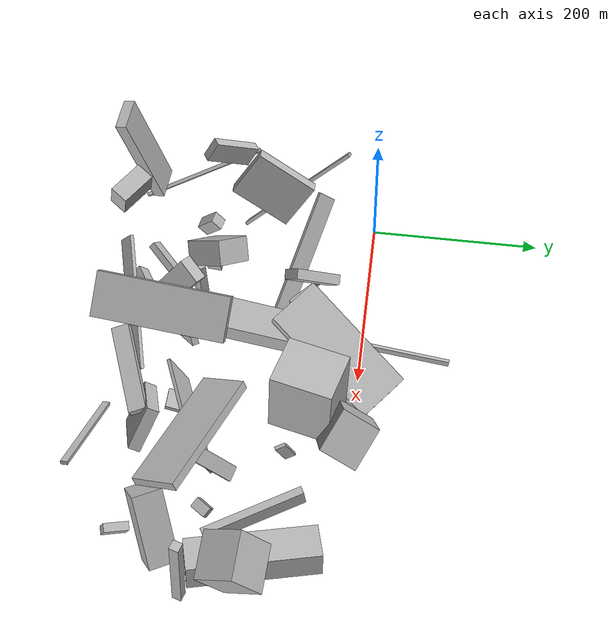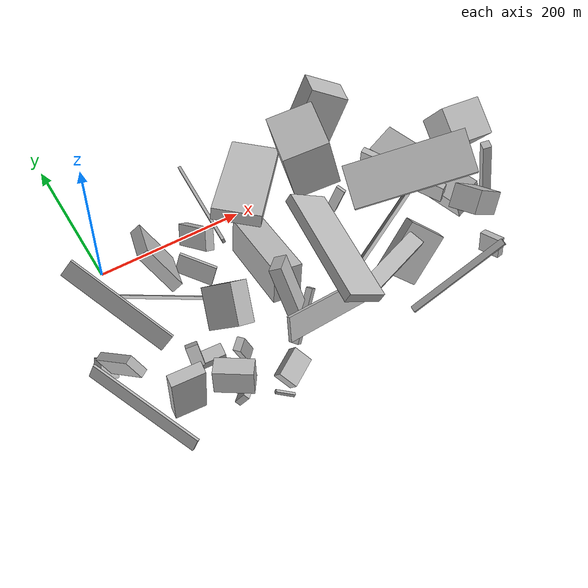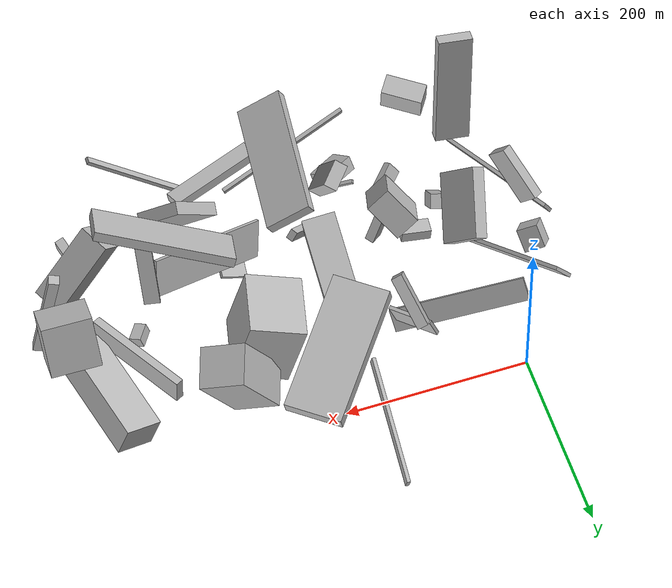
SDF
<sdf version="1.6">
 <world name="default">
  <model name="building_1">
   <static>0</static>
   <pose>-16.874202046947126 -96.55154958133949 64.06567864982752 -2.4018138667731352 -0.8921669992972914 -0.07573137161854886</pose>
   <link name="link">
    <gravity>0</gravity>
    <pose>0 0 2.0 0 0 0</pose>
    <collision name="collision"><geometry><box><size>25 150 4</size></box></geometry></collision>
    <visual name="visual">
     <cast_shadows>0</cast_shadows>
     <geometry><box><size>25 150 4</size></box></geometry>
     <material>
      <script>
       <uri>model://HANNAS_wall/materials/scripts</uri>
       <uri>model://HANNAS_wall/materials/textures</uri>
       <name>vrc/HANNAS_wall</name>
      </script>
     </material>
    </visual>
   </link>
  </model>
  <model name="building_2">
   <static>0</static>
   <pose>173.05219122710406 -72.95754308126676 59.44368679060228 1.3479795762569315 0.13969321511603275 -0.07342275533438569</pose>
   <link name="link">
    <gravity>0</gravity>
    <pose>0 0 56.0 0 0 0</pose>
    <collision name="collision"><geometry><box><size>36 47 112</size></box></geometry></collision>
    <visual name="visual">
     <cast_shadows>0</cast_shadows>
     <geometry><box><size>36 47 112</size></box></geometry>
     <material>
      <script>
       <uri>model://HANNAS_wall/materials/scripts</uri>
       <uri>model://HANNAS_wall/materials/textures</uri>
       <name>vrc/HANNAS_wall</name>
      </script>
     </material>
    </visual>
   </link>
  </model>
  <model name="building_4">
   <static>0</static>
   <pose>-47.79910704039926 -216.81489982392512 23.80374327561661 0.45806923557373713 -0.1662707721679615 2.020924672866933</pose>
   <link name="link">
    <gravity>0</gravity>
    <pose>0 0 8.5 0 0 0</pose>
    <collision name="collision"><geometry><box><size>150 4 17</size></box></geometry></collision>
    <visual name="visual">
     <cast_shadows>0</cast_shadows>
     <geometry><box><size>150 4 17</size></box></geometry>
     <material>
      <script>
       <uri>model://HANNAS_wall/materials/scripts</uri>
       <uri>model://HANNAS_wall/materials/textures</uri>
       <name>vrc/HANNAS_wall</name>
      </script>
     </material>
    </visual>
   </link>
  </model>
  <model name="building_7">
   <static>0</static>
   <pose>37.50927661575013 -189.18100023504584 43.95644942055945 -0.8073901912445586 0.16542618009762333 2.946928458306373</pose>
   <link name="link">
    <gravity>0</gravity>
    <pose>0 0 8.0 0 0 0</pose>
    <collision name="collision"><geometry><box><size>15 26 16</size></box></geometry></collision>
    <visual name="visual">
     <cast_shadows>0</cast_shadows>
     <geometry><box><size>15 26 16</size></box></geometry>
     <material>
      <script>
       <uri>model://HANNAS_wall/materials/scripts</uri>
       <uri>model://HANNAS_wall/materials/textures</uri>
       <name>vrc/HANNAS_wall</name>
      </script>
     </material>
    </visual>
   </link>
  </model>
  <model name="building_11">
   <static>0</static>
   <pose>262.8686615402564 -81.90210704428698 131.5539841347299 1.5340880472795329 0.24916760166507096 2.895060523938277</pose>
   <link name="link">
    <gravity>0</gravity>
    <pose>0 0 35.0 0 0 0</pose>
    <collision name="collision"><geometry><box><size>60 82 70</size></box></geometry></collision>
    <visual name="visual">
     <cast_shadows>0</cast_shadows>
     <geometry><box><size>60 82 70</size></box></geometry>
     <material>
      <script>
       <uri>model://HANNAS_wall/materials/scripts</uri>
       <uri>model://HANNAS_wall/materials/textures</uri>
       <name>vrc/HANNAS_wall</name>
      </script>
     </material>
    </visual>
   </link>
  </model>
  <model name="building_16">
   <static>0</static>
   <pose>294.25643481398083 -6.646318750802287 91.21542643138092 0.41600658821906183 0.2985280455373625 1.2212802390428055</pose>
   <link name="link">
    <gravity>0</gravity>
    <pose>0 0 43.5 0 0 0</pose>
    <collision name="collision"><geometry><box><size>44 50 87</size></box></geometry></collision>
    <visual name="visual">
     <cast_shadows>0</cast_shadows>
     <geometry><box><size>44 50 87</size></box></geometry>
     <material>
      <script>
       <uri>model://HANNAS_wall/materials/scripts</uri>
       <uri>model://HANNAS_wall/materials/textures</uri>
       <name>vrc/HANNAS_wall</name>
      </script>
     </material>
    </visual>
   </link>
  </model>
  <model name="building_19">
   <static>0</static>
   <pose>183.95789938375566 -255.46991980841224 122.63478269574074 -1.1235261250478144 -0.3074954822950232 -2.9362975289541473</pose>
   <link name="link">
    <gravity>0</gravity>
    <pose>0 0 2.0 0 0 0</pose>
    <collision name="collision"><geometry><box><size>150 30 4</size></box></geometry></collision>
    <visual name="visual">
     <cast_shadows>0</cast_shadows>
     <geometry><box><size>150 30 4</size></box></geometry>
     <material>
      <script>
       <uri>model://HANNAS_wall/materials/scripts</uri>
       <uri>model://HANNAS_wall/materials/textures</uri>
       <name>vrc/HANNAS_wall</name>
      </script>
     </material>
    </visual>
   </link>
  </model>
  <model name="building_21">
   <static>0</static>
   <pose>377.53155659933014 -161.58489503979825 8.976761662799078 2.830281916351776 -0.01727150724491431 -2.179556579080104</pose>
   <link name="link">
    <gravity>0</gravity>
    <pose>0 0 6.5 0 0 0</pose>
    <collision name="collision"><geometry><box><size>20 13 13</size></box></geometry></collision>
    <visual name="visual">
     <cast_shadows>0</cast_shadows>
     <geometry><box><size>20 13 13</size></box></geometry>
     <material>
      <script>
       <uri>model://HANNAS_wall/materials/scripts</uri>
       <uri>model://HANNAS_wall/materials/textures</uri>
       <name>vrc/HANNAS_wall</name>
      </script>
     </material>
    </visual>
   </link>
  </model>
  <model name="building_22">
   <static>0</static>
   <pose>-10.3150727138669 -268.10797462904475 130.46524671172148 1.8202813087983527 -0.07039948415981105 -0.09854468517857572</pose>
   <link name="link">
    <gravity>0</gravity>
    <pose>0 0 6.5 0 0 0</pose>
    <collision name="collision"><geometry><box><size>37 134 13</size></box></geometry></collision>
    <visual name="visual">
     <cast_shadows>0</cast_shadows>
     <geometry><box><size>37 134 13</size></box></geometry>
     <material>
      <script>
       <uri>model://HANNAS_wall/materials/scripts</uri>
       <uri>model://HANNAS_wall/materials/textures</uri>
       <name>vrc/HANNAS_wall</name>
      </script>
     </material>
    </visual>
   </link>
  </model>
  <model name="building_23">
   <static>0</static>
   <pose>295.2608856225371 -181.44611489909067 81.64813200044021 -1.1963494582615752 -0.39699100307764523 0.3850275791023789</pose>
   <link name="link">
    <gravity>0</gravity>
    <pose>0 0 2.0 0 0 0</pose>
    <collision name="collision"><geometry><box><size>150 42 4</size></box></geometry></collision>
    <visual name="visual">
     <cast_shadows>0</cast_shadows>
     <geometry><box><size>150 42 4</size></box></geometry>
     <material>
      <script>
       <uri>model://HANNAS_wall/materials/scripts</uri>
       <uri>model://HANNAS_wall/materials/textures</uri>
       <name>vrc/HANNAS_wall</name>
      </script>
     </material>
    </visual>
   </link>
  </model>
  <model name="building_24">
   <static>0</static>
   <pose>160.1400708516067 -198.52335312003063 119.28582097609758 -1.1852439145454967 0.42545596520661905 2.5401878207706696</pose>
   <link name="link">
    <gravity>0</gravity>
    <pose>0 0 14.5 0 0 0</pose>
    <collision name="collision"><geometry><box><size>15 63 29</size></box></geometry></collision>
    <visual name="visual">
     <cast_shadows>0</cast_shadows>
     <geometry><box><size>15 63 29</size></box></geometry>
     <material>
      <script>
       <uri>model://HANNAS_wall/materials/scripts</uri>
       <uri>model://HANNAS_wall/materials/textures</uri>
       <name>vrc/HANNAS_wall</name>
      </script>
     </material>
    </visual>
   </link>
  </model>
  <model name="building_28">
   <static>0</static>
   <pose>367.3742764468928 -43.66935493340659 65.87529768774772 1.6109510089707875 -0.06697222815216503 0.506755102536705</pose>
   <link name="link">
    <gravity>0</gravity>
    <pose>0 0 59.5 0 0 0</pose>
    <collision name="collision"><geometry><box><size>9 28 119</size></box></geometry></collision>
    <visual name="visual">
     <cast_shadows>0</cast_shadows>
     <geometry><box><size>9 28 119</size></box></geometry>
     <material>
      <script>
       <uri>model://HANNAS_wall/materials/scripts</uri>
       <uri>model://HANNAS_wall/materials/textures</uri>
       <name>vrc/HANNAS_wall</name>
      </script>
     </material>
    </visual>
   </link>
  </model>
  <model name="building_29">
   <static>0</static>
   <pose>467.3617362444928 -119.2827186010202 147.98930259061393 -3.0777652267102185 -0.5513376746879186 1.4800898679576147</pose>
   <link name="link">
    <gravity>0</gravity>
    <pose>0 0 27.5 0 0 0</pose>
    <collision name="collision"><geometry><box><size>49 54 55</size></box></geometry></collision>
    <visual name="visual">
     <cast_shadows>0</cast_shadows>
     <geometry><box><size>49 54 55</size></box></geometry>
     <material>
      <script>
       <uri>model://HANNAS_wall/materials/scripts</uri>
       <uri>model://HANNAS_wall/materials/textures</uri>
       <name>vrc/HANNAS_wall</name>
      </script>
     </material>
    </visual>
   </link>
  </model>
  <model name="building_30">
   <static>0</static>
   <pose>417.90250078699285 -97.21010224682058 36.939371527577336 1.2402114440798806 0.0785611428417199 1.8086273152203385</pose>
   <link name="link">
    <gravity>0</gravity>
    <pose>0 0 21.0 0 0 0</pose>
    <collision name="collision"><geometry><box><size>150 34 42</size></box></geometry></collision>
    <visual name="visual">
     <cast_shadows>0</cast_shadows>
     <geometry><box><size>150 34 42</size></box></geometry>
     <material>
      <script>
       <uri>model://HANNAS_wall/materials/scripts</uri>
       <uri>model://HANNAS_wall/materials/textures</uri>
       <name>vrc/HANNAS_wall</name>
      </script>
     </material>
    </visual>
   </link>
  </model>
  <model name="building_32">
   <static>0</static>
   <pose>47.5553355355397 -272.68253483627683 125.40044677939412 1.4089859767862278 -0.062020753035507345 -0.5986083164916539</pose>
   <link name="link">
    <gravity>0</gravity>
    <pose>0 0 11.0 0 0 0</pose>
    <collision name="collision"><geometry><box><size>44 31 22</size></box></geometry></collision>
    <visual name="visual">
     <cast_shadows>0</cast_shadows>
     <geometry><box><size>44 31 22</size></box></geometry>
     <material>
      <script>
       <uri>model://HANNAS_wall/materials/scripts</uri>
       <uri>model://HANNAS_wall/materials/textures</uri>
       <name>vrc/HANNAS_wall</name>
      </script>
     </material>
    </visual>
   </link>
  </model>
  <model name="building_37">
   <static>0</static>
   <pose>78.81327983981879 -178.44567197501158 96.67587524709782 2.312177013446687 -0.6213776650274483 1.2870508743369462</pose>
   <link name="link">
    <gravity>0</gravity>
    <pose>0 0 14.5 0 0 0</pose>
    <collision name="collision"><geometry><box><size>51 46 29</size></box></geometry></collision>
    <visual name="visual">
     <cast_shadows>0</cast_shadows>
     <geometry><box><size>51 46 29</size></box></geometry>
     <material>
      <script>
       <uri>model://HANNAS_wall/materials/scripts</uri>
       <uri>model://HANNAS_wall/materials/textures</uri>
       <name>vrc/HANNAS_wall</name>
      </script>
     </material>
    </visual>
   </link>
  </model>
  <model name="building_38">
   <static>0</static>
   <pose>362.11058647797586 -137.34548855334262 154.6769716192568 1.7715634732673153 -0.6096609944284881 1.1562547281240683</pose>
   <link name="link">
    <gravity>0</gravity>
    <pose>0 0 8.5 0 0 0</pose>
    <collision name="collision"><geometry><box><size>4 72 17</size></box></geometry></collision>
    <visual name="visual">
     <cast_shadows>0</cast_shadows>
     <geometry><box><size>4 72 17</size></box></geometry>
     <material>
      <script>
       <uri>model://HANNAS_wall/materials/scripts</uri>
       <uri>model://HANNAS_wall/materials/textures</uri>
       <name>vrc/HANNAS_wall</name>
      </script>
     </material>
    </visual>
   </link>
  </model>
  <model name="building_42">
   <static>0</static>
   <pose>284.63761960370834 -278.024859431227 64.82241791091182 -0.2012501992646284 -0.8742957575851164 -3.035527273050312</pose>
   <link name="link">
    <gravity>0</gravity>
    <pose>0 0 66.5 0 0 0</pose>
    <collision name="collision"><geometry><box><size>4 8 133</size></box></geometry></collision>
    <visual name="visual">
     <cast_shadows>0</cast_shadows>
     <geometry><box><size>4 8 133</size></box></geometry>
     <material>
      <script>
       <uri>model://HANNAS_wall/materials/scripts</uri>
       <uri>model://HANNAS_wall/materials/textures</uri>
       <name>vrc/HANNAS_wall</name>
      </script>
     </material>
    </visual>
   </link>
  </model>
  <model name="building_43">
   <static>0</static>
   <pose>421.2577406737661 -205.53544495674356 89.156141024974 0.7761521772453154 0.1656555337284517 2.07901434761364</pose>
   <link name="link">
    <gravity>0</gravity>
    <pose>0 0 15.0 0 0 0</pose>
    <collision name="collision"><geometry><box><size>34 88 30</size></box></geometry></collision>
    <visual name="visual">
     <cast_shadows>0</cast_shadows>
     <geometry><box><size>34 88 30</size></box></geometry>
     <material>
      <script>
       <uri>model://HANNAS_wall/materials/scripts</uri>
       <uri>model://HANNAS_wall/materials/textures</uri>
       <name>vrc/HANNAS_wall</name>
      </script>
     </material>
    </visual>
   </link>
  </model>
  <model name="building_44">
   <static>0</static>
   <pose>68.03166980841092 -247.31026941786513 14.686139269177403 -0.2769546848523489 0.5612419998153829 -0.9231047998068369</pose>
   <link name="link">
    <gravity>0</gravity>
    <pose>0 0 9.0 0 0 0</pose>
    <collision name="collision"><geometry><box><size>8 39 18</size></box></geometry></collision>
    <visual name="visual">
     <cast_shadows>0</cast_shadows>
     <geometry><box><size>8 39 18</size></box></geometry>
     <material>
      <script>
       <uri>model://HANNAS_wall/materials/scripts</uri>
       <uri>model://HANNAS_wall/materials/textures</uri>
       <name>vrc/HANNAS_wall</name>
      </script>
     </material>
    </visual>
   </link>
  </model>
  <model name="building_45">
   <static>0</static>
   <pose>59.60392662925878 -186.8628000925574 20.54631793345461 -3.0817092671948667 -0.09464475727774849 -0.10966627602671805</pose>
   <link name="link">
    <gravity>0</gravity>
    <pose>0 0 6.5 0 0 0</pose>
    <collision name="collision"><geometry><box><size>32 17 13</size></box></geometry></collision>
    <visual name="visual">
     <cast_shadows>0</cast_shadows>
     <geometry><box><size>32 17 13</size></box></geometry>
     <material>
      <script>
       <uri>model://HANNAS_wall/materials/scripts</uri>
       <uri>model://HANNAS_wall/materials/textures</uri>
       <name>vrc/HANNAS_wall</name>
      </script>
     </material>
    </visual>
   </link>
  </model>
  <model name="building_46">
   <static>0</static>
   <pose>-44.52106242254291 -177.32988392611014 78.75708484350338 1.7735498536990881 0.8953578525776058 -0.8635785609920408</pose>
   <link name="link">
    <gravity>0</gravity>
    <pose>0 0 5.5 0 0 0</pose>
    <collision name="collision"><geometry><box><size>27 62 11</size></box></geometry></collision>
    <visual name="visual">
     <cast_shadows>0</cast_shadows>
     <geometry><box><size>27 62 11</size></box></geometry>
     <material>
      <script>
       <uri>model://HANNAS_wall/materials/scripts</uri>
       <uri>model://HANNAS_wall/materials/textures</uri>
       <name>vrc/HANNAS_wall</name>
      </script>
     </material>
    </visual>
   </link>
  </model>
  <model name="building_47">
   <static>0</static>
   <pose>340.27064593183763 -186.72686847749458 155.36567409551566 -1.0453662867021964 -0.27684825875445535 -0.36548800734157855</pose>
   <link name="link">
    <gravity>0</gravity>
    <pose>0 0 27.0 0 0 0</pose>
    <collision name="collision"><geometry><box><size>150 10 54</size></box></geometry></collision>
    <visual name="visual">
     <cast_shadows>0</cast_shadows>
     <geometry><box><size>150 10 54</size></box></geometry>
     <material>
      <script>
       <uri>model://HANNAS_wall/materials/scripts</uri>
       <uri>model://HANNAS_wall/materials/textures</uri>
       <name>vrc/HANNAS_wall</name>
      </script>
     </material>
    </visual>
   </link>
  </model>
  <model name="building_48">
   <static>0</static>
   <pose>156.2006092629337 -43.65180132421858 18.497420510155127 -1.8854498221008917 1.3457768724033812 -0.3918592108623847</pose>
   <link name="link">
    <gravity>0</gravity>
    <pose>0 0 75.0 0 0 0</pose>
    <collision name="collision"><geometry><box><size>8 4 150</size></box></geometry></collision>
    <visual name="visual">
     <cast_shadows>0</cast_shadows>
     <geometry><box><size>8 4 150</size></box></geometry>
     <material>
      <script>
       <uri>model://HANNAS_wall/materials/scripts</uri>
       <uri>model://HANNAS_wall/materials/textures</uri>
       <name>vrc/HANNAS_wall</name>
      </script>
     </material>
    </visual>
   </link>
  </model>
  <model name="building_49">
   <static>0</static>
   <pose>286.6682627419168 -235.91647320409365 82.26272842089891 0.563733500214347 -0.6568847404069291 2.658560051320104</pose>
   <link name="link">
    <gravity>0</gravity>
    <pose>0 0 33.5 0 0 0</pose>
    <collision name="collision"><geometry><box><size>52 14 67</size></box></geometry></collision>
    <visual name="visual">
     <cast_shadows>0</cast_shadows>
     <geometry><box><size>52 14 67</size></box></geometry>
     <material>
      <script>
       <uri>model://HANNAS_wall/materials/scripts</uri>
       <uri>model://HANNAS_wall/materials/textures</uri>
       <name>vrc/HANNAS_wall</name>
      </script>
     </material>
    </visual>
   </link>
  </model>
  <model name="building_52">
   <static>0</static>
   <pose>423.48487276732794 -231.8351201853288 58.731394701983845 -1.3091101169059456 -0.2033471321702594 -2.9062840321191024</pose>
   <link name="link">
    <gravity>0</gravity>
    <pose>0 0 14.0 0 0 0</pose>
    <collision name="collision"><geometry><box><size>10 25 28</size></box></geometry></collision>
    <visual name="visual">
     <cast_shadows>0</cast_shadows>
     <geometry><box><size>10 25 28</size></box></geometry>
     <material>
      <script>
       <uri>model://HANNAS_wall/materials/scripts</uri>
       <uri>model://HANNAS_wall/materials/textures</uri>
       <name>vrc/HANNAS_wall</name>
      </script>
     </material>
    </visual>
   </link>
  </model>
  <model name="building_53">
   <static>0</static>
   <pose>155.72546079505366 -80.35731708934277 106.68687943028384 -2.9556888915422705 -1.3224025575748328 0.6959382099704893</pose>
   <link name="link">
    <gravity>0</gravity>
    <pose>0 0 75.0 0 0 0</pose>
    <collision name="collision"><geometry><box><size>17 63 150</size></box></geometry></collision>
    <visual name="visual">
     <cast_shadows>0</cast_shadows>
     <geometry><box><size>17 63 150</size></box></geometry>
     <material>
      <script>
       <uri>model://HANNAS_wall/materials/scripts</uri>
       <uri>model://HANNAS_wall/materials/textures</uri>
       <name>vrc/HANNAS_wall</name>
      </script>
     </material>
    </visual>
   </link>
  </model>
  <model name="building_57">
   <static>0</static>
   <pose>312.61928889226556 -70.78548424101021 40.42432434738214 1.424804461687226 -1.3306985318012021 -0.9863110307686369</pose>
   <link name="link">
    <gravity>0</gravity>
    <pose>0 0 2.0 0 0 0</pose>
    <collision name="collision"><geometry><box><size>47 13 4</size></box></geometry></collision>
    <visual name="visual">
     <cast_shadows>0</cast_shadows>
     <geometry><box><size>47 13 4</size></box></geometry>
     <material>
      <script>
       <uri>model://HANNAS_wall/materials/scripts</uri>
       <uri>model://HANNAS_wall/materials/textures</uri>
       <name>vrc/HANNAS_wall</name>
      </script>
     </material>
    </visual>
   </link>
  </model>
  <model name="building_58">
   <static>0</static>
   <pose>113.87240369359654 -271.30053491446466 9.757551479583295 2.645925975058506 -0.22407745721900812 -1.8677251163847695</pose>
   <link name="link">
    <gravity>0</gravity>
    <pose>0 0 2.0 0 0 0</pose>
    <collision name="collision"><geometry><box><size>4 26 4</size></box></geometry></collision>
    <visual name="visual">
     <cast_shadows>0</cast_shadows>
     <geometry><box><size>4 26 4</size></box></geometry>
     <material>
      <script>
       <uri>model://HANNAS_wall/materials/scripts</uri>
       <uri>model://HANNAS_wall/materials/textures</uri>
       <name>vrc/HANNAS_wall</name>
      </script>
     </material>
    </visual>
   </link>
  </model>
  <model name="building_59">
   <static>0</static>
   <pose>-20.4229112184243 -61.4020133487221 43.18222428530399 -2.113438939981502 -0.810365282095073 -1.4407399920073911</pose>
   <link name="link">
    <gravity>0</gravity>
    <pose>0 0 75.0 0 0 0</pose>
    <collision name="collision"><geometry><box><size>25 4 150</size></box></geometry></collision>
    <visual name="visual">
     <cast_shadows>0</cast_shadows>
     <geometry><box><size>25 4 150</size></box></geometry>
     <material>
      <script>
       <uri>model://HANNAS_wall/materials/scripts</uri>
       <uri>model://HANNAS_wall/materials/textures</uri>
       <name>vrc/HANNAS_wall</name>
      </script>
     </material>
    </visual>
   </link>
  </model>
  <model name="building_60">
   <static>0</static>
   <pose>208.45230086555495 -216.75032121642948 175.3612667216798 3.1333128277470506 -0.5344953907307471 3.034853857214807</pose>
   <link name="link">
    <gravity>0</gravity>
    <pose>0 0 6.0 0 0 0</pose>
    <collision name="collision"><geometry><box><size>51 150 12</size></box></geometry></collision>
    <visual name="visual">
     <cast_shadows>0</cast_shadows>
     <geometry><box><size>51 150 12</size></box></geometry>
     <material>
      <script>
       <uri>model://HANNAS_wall/materials/scripts</uri>
       <uri>model://HANNAS_wall/materials/textures</uri>
       <name>vrc/HANNAS_wall</name>
      </script>
     </material>
    </visual>
   </link>
  </model>
  <model name="building_61">
   <static>0</static>
   <pose>104.76215846836777 -71.2816631034795 70.180959358878 0.4566312091597189 0.5800159957374073 1.84221152961047</pose>
   <link name="link">
    <gravity>0</gravity>
    <pose>0 0 13.5 0 0 0</pose>
    <collision name="collision"><geometry><box><size>59 12 27</size></box></geometry></collision>
    <visual name="visual">
     <cast_shadows>0</cast_shadows>
     <geometry><box><size>59 12 27</size></box></geometry>
     <material>
      <script>
       <uri>model://HANNAS_wall/materials/scripts</uri>
       <uri>model://HANNAS_wall/materials/textures</uri>
       <name>vrc/HANNAS_wall</name>
      </script>
     </material>
    </visual>
   </link>
  </model>
  <model name="building_62">
   <static>0</static>
   <pose>196.67519370023007 -190.01298529999033 64.45652030240909 2.931201757738394 0.8324412290739511 0.43425759113251566</pose>
   <link name="link">
    <gravity>0</gravity>
    <pose>0 0 35.0 0 0 0</pose>
    <collision name="collision"><geometry><box><size>11 8 70</size></box></geometry></collision>
    <visual name="visual">
     <cast_shadows>0</cast_shadows>
     <geometry><box><size>11 8 70</size></box></geometry>
     <material>
      <script>
       <uri>model://HANNAS_wall/materials/scripts</uri>
       <uri>model://HANNAS_wall/materials/textures</uri>
       <name>vrc/HANNAS_wall</name>
      </script>
     </material>
    </visual>
   </link>
  </model>
  <model name="building_63">
   <static>0</static>
   <pose>117.64512055389078 -89.6555016993479 22.666365110531448 0.9781812940090575 1.2512745191457646 -2.985554062118166</pose>
   <link name="link">
    <gravity>0</gravity>
    <pose>0 0 25.0 0 0 0</pose>
    <collision name="collision"><geometry><box><size>30 4 50</size></box></geometry></collision>
    <visual name="visual">
     <cast_shadows>0</cast_shadows>
     <geometry><box><size>30 4 50</size></box></geometry>
     <material>
      <script>
       <uri>model://HANNAS_wall/materials/scripts</uri>
       <uri>model://HANNAS_wall/materials/textures</uri>
       <name>vrc/HANNAS_wall</name>
      </script>
     </material>
    </visual>
   </link>
  </model>
  <model name="building_67">
   <static>0</static>
   <pose>261.27120931196526 -197.88244047711467 34.452946997348896 2.8641670339423055 -0.46005019795913854 0.0383319644115852</pose>
   <link name="link">
    <gravity>0</gravity>
    <pose>0 0 2.0 0 0 0</pose>
    <collision name="collision"><geometry><box><size>31 35 4</size></box></geometry></collision>
    <visual name="visual">
     <cast_shadows>0</cast_shadows>
     <geometry><box><size>31 35 4</size></box></geometry>
     <material>
      <script>
       <uri>model://HANNAS_wall/materials/scripts</uri>
       <uri>model://HANNAS_wall/materials/textures</uri>
       <name>vrc/HANNAS_wall</name>
      </script>
     </material>
    </visual>
   </link>
  </model>
  <model name="building_71">
   <static>0</static>
   <pose>42.20034076970466 -84.07586268895498 130.80984367385472 -0.7815868975634813 -0.833621323481722 2.2297956462538076</pose>
   <link name="link">
    <gravity>0</gravity>
    <pose>0 0 37.0 0 0 0</pose>
    <collision name="collision"><geometry><box><size>58 14 74</size></box></geometry></collision>
    <visual name="visual">
     <cast_shadows>0</cast_shadows>
     <geometry><box><size>58 14 74</size></box></geometry>
     <material>
      <script>
       <uri>model://HANNAS_wall/materials/scripts</uri>
       <uri>model://HANNAS_wall/materials/textures</uri>
       <name>vrc/HANNAS_wall</name>
      </script>
     </material>
    </visual>
   </link>
  </model>
  <model name="building_72">
   <static>0</static>
   <pose>269.08777993957204 -255.38453921124687 127.07785066455045 -0.09205746147577977 -1.3387322477025045 -1.1309356527350802</pose>
   <link name="link">
    <gravity>0</gravity>
    <pose>0 0 10.0 0 0 0</pose>
    <collision name="collision"><geometry><box><size>10 102 20</size></box></geometry></collision>
    <visual name="visual">
     <cast_shadows>0</cast_shadows>
     <geometry><box><size>10 102 20</size></box></geometry>
     <material>
      <script>
       <uri>model://HANNAS_wall/materials/scripts</uri>
       <uri>model://HANNAS_wall/materials/textures</uri>
       <name>vrc/HANNAS_wall</name>
      </script>
     </material>
    </visual>
   </link>
  </model>
  <model name="building_73">
   <static>0</static>
   <pose>-51.05204479205862 -131.4637469165209 22.403668586633405 2.474065313969559 -0.8135709655859451 -1.3345174617895728</pose>
   <link name="link">
    <gravity>0</gravity>
    <pose>0 0 11.0 0 0 0</pose>
    <collision name="collision"><geometry><box><size>26 23 22</size></box></geometry></collision>
    <visual name="visual">
     <cast_shadows>0</cast_shadows>
     <geometry><box><size>26 23 22</size></box></geometry>
     <material>
      <script>
       <uri>model://HANNAS_wall/materials/scripts</uri>
       <uri>model://HANNAS_wall/materials/textures</uri>
       <name>vrc/HANNAS_wall</name>
      </script>
     </material>
    </visual>
   </link>
  </model>
  <model name="building_75">
   <static>0</static>
   <pose>142.26871100457709 -255.4142137754875 49.05214665943133 1.7974559122364746 -0.9791346660553585 -1.216989832504422</pose>
   <link name="link">
    <gravity>0</gravity>
    <pose>0 0 19.0 0 0 0</pose>
    <collision name="collision"><geometry><box><size>16 25 38</size></box></geometry></collision>
    <visual name="visual">
     <cast_shadows>0</cast_shadows>
     <geometry><box><size>16 25 38</size></box></geometry>
     <material>
      <script>
       <uri>model://HANNAS_wall/materials/scripts</uri>
       <uri>model://HANNAS_wall/materials/textures</uri>
       <name>vrc/HANNAS_wall</name>
      </script>
     </material>
    </visual>
   </link>
  </model>
  <model name="building_76">
   <static>0</static>
   <pose>101.83318946908753 -196.41762162915936 25.354318031979123 2.700485214563712 1.2287996481548011 0.25814030574515523</pose>
   <link name="link">
    <gravity>0</gravity>
    <pose>0 0 8.5 0 0 0</pose>
    <collision name="collision"><geometry><box><size>42 10 17</size></box></geometry></collision>
    <visual name="visual">
     <cast_shadows>0</cast_shadows>
     <geometry><box><size>42 10 17</size></box></geometry>
     <material>
      <script>
       <uri>model://HANNAS_wall/materials/scripts</uri>
       <uri>model://HANNAS_wall/materials/textures</uri>
       <name>vrc/HANNAS_wall</name>
      </script>
     </material>
    </visual>
   </link>
  </model>
  <model name="building_77">
   <static>0</static>
   <pose>478.7082007759876 -167.82108466962111 85.5879005938809 1.7428752238048142 0.005724310718626911 -1.868226628484497</pose>
   <link name="link">
    <gravity>0</gravity>
    <pose>0 0 5.5 0 0 0</pose>
    <collision name="collision"><geometry><box><size>11 127 11</size></box></geometry></collision>
    <visual name="visual">
     <cast_shadows>0</cast_shadows>
     <geometry><box><size>11 127 11</size></box></geometry>
     <material>
      <script>
       <uri>model://HANNAS_wall/materials/scripts</uri>
       <uri>model://HANNAS_wall/materials/textures</uri>
       <name>vrc/HANNAS_wall</name>
      </script>
     </material>
    </visual>
   </link>
  </model>
 </world>
</sdf>
